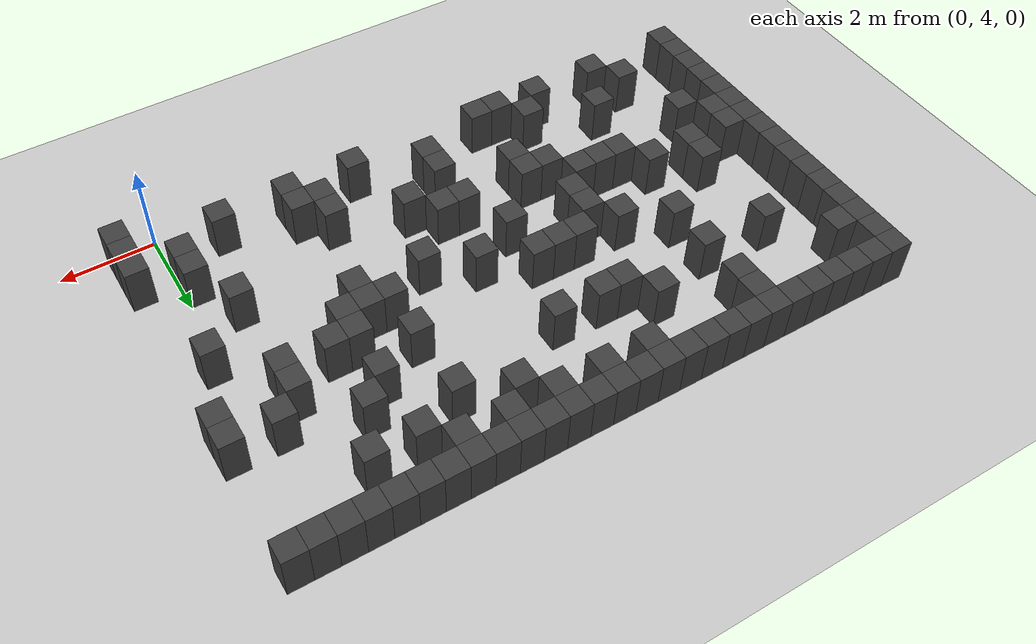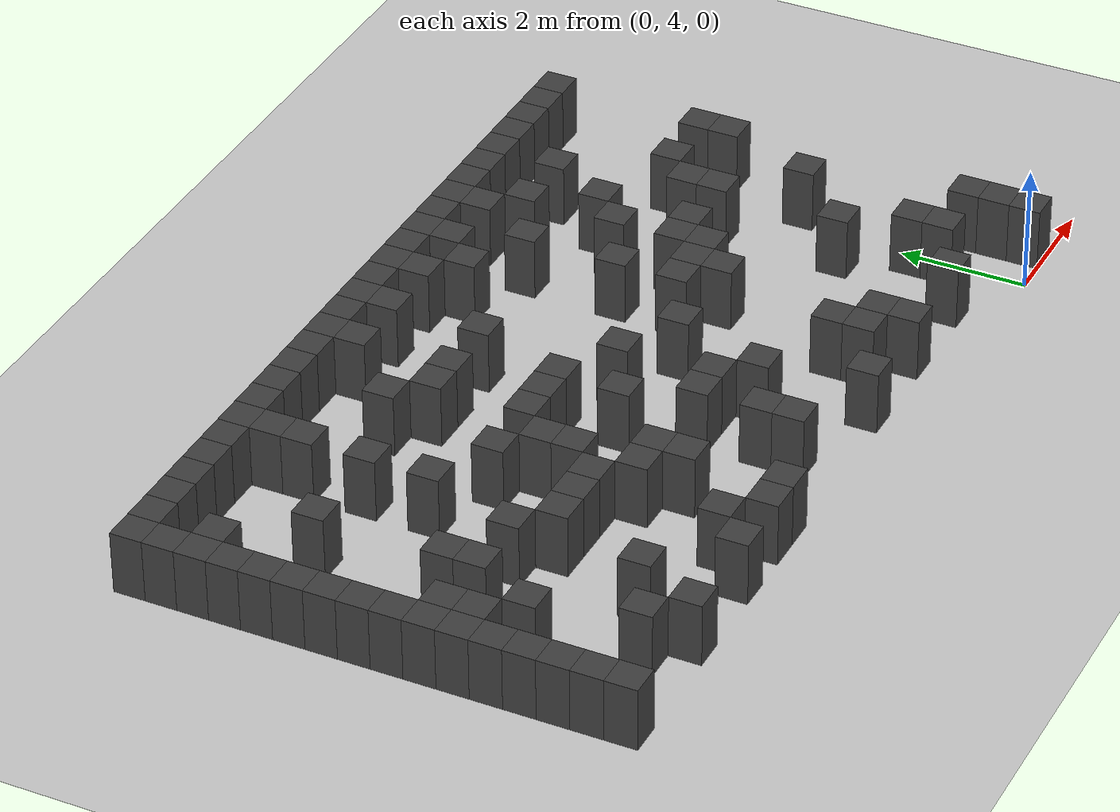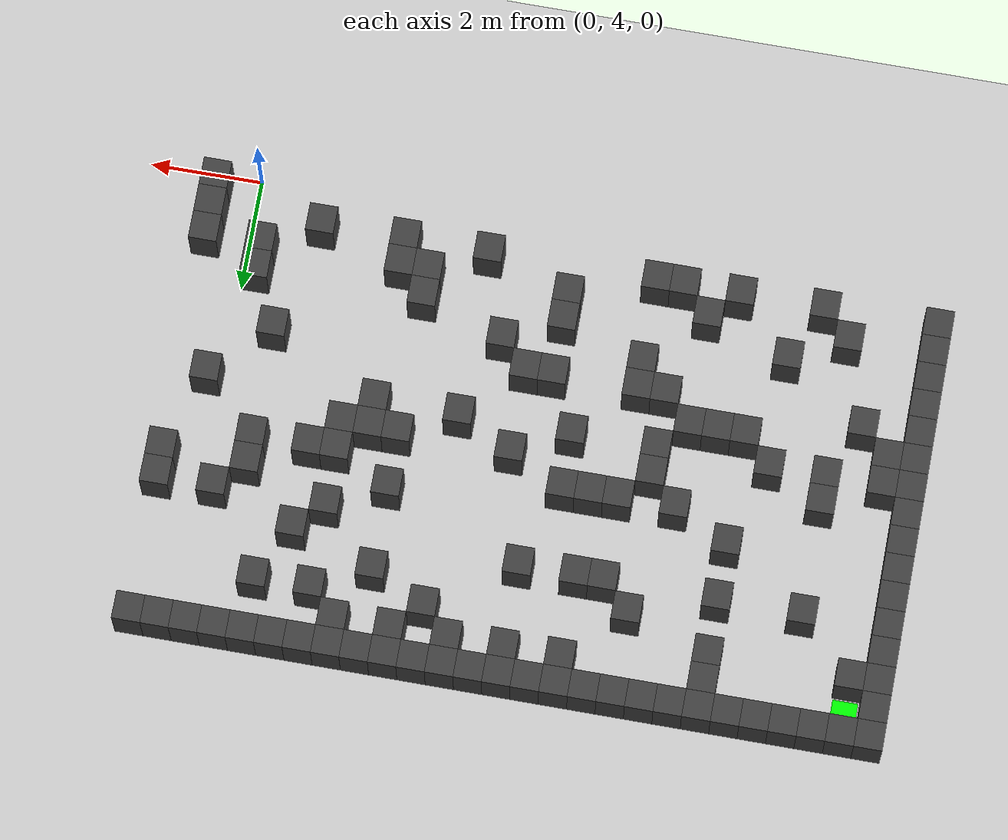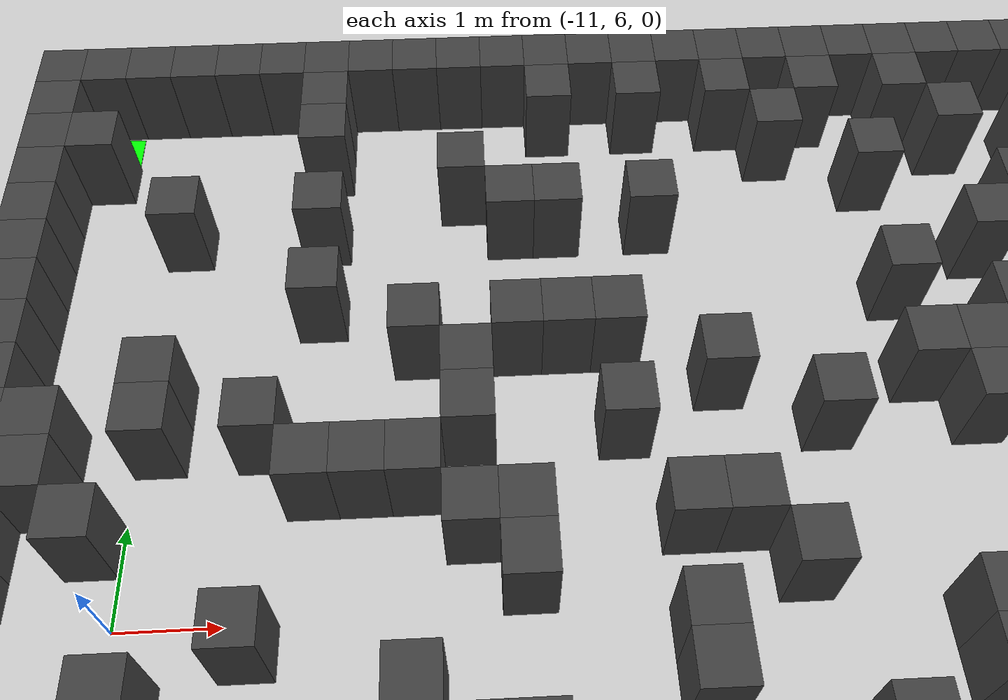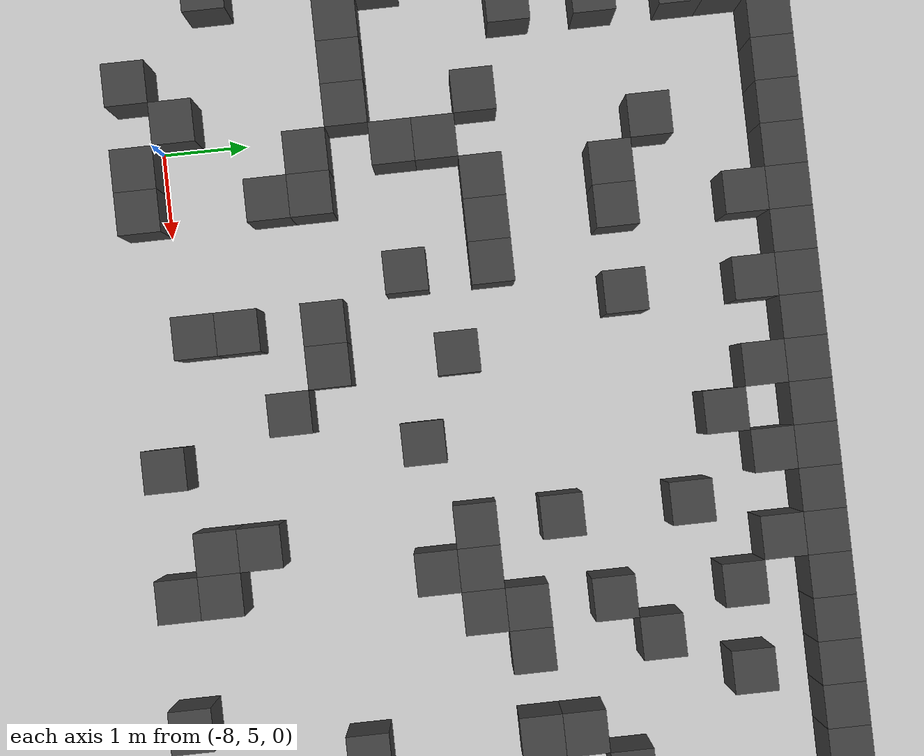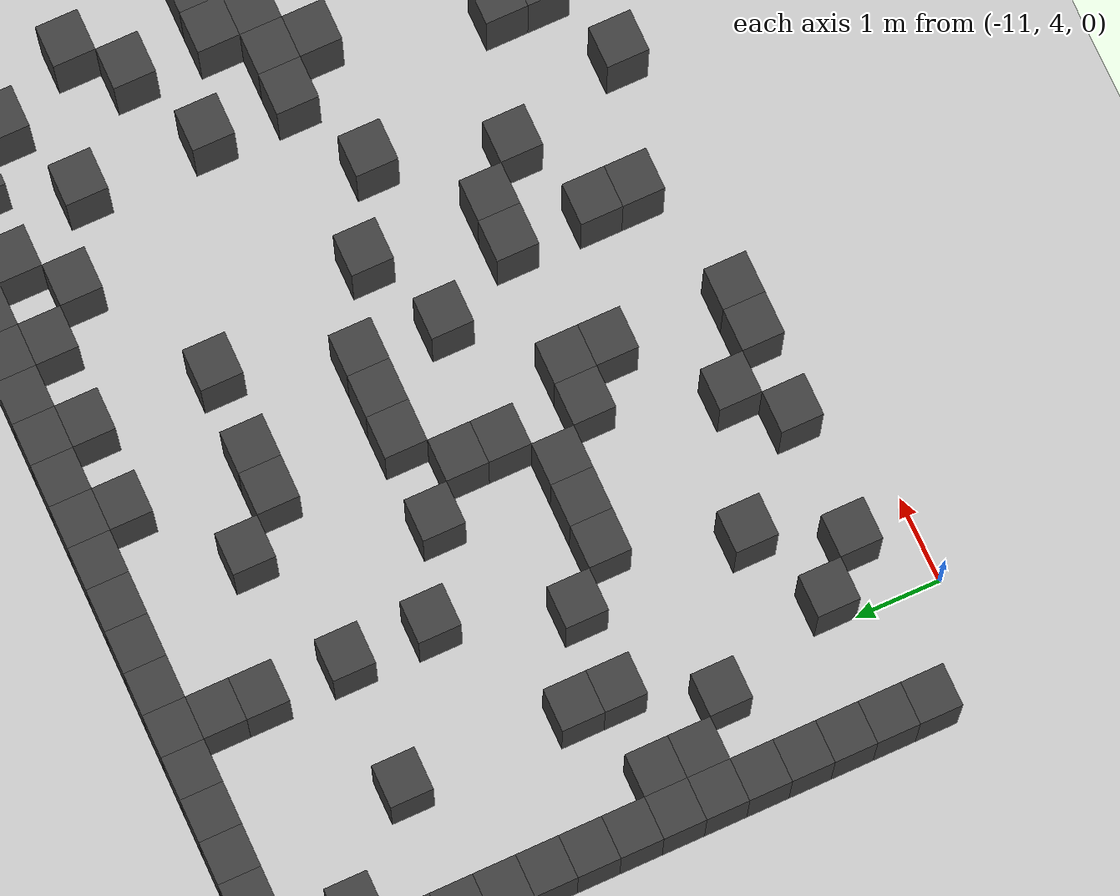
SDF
<sdf version="1.7">
 <world name="map_4818">
  <model name="ground_plane">
   <static>true</static>
   <link name="link">
    <collision name="collision">
     <geometry><plane><normal>0 0 1</normal><size>200 200</size></plane></geometry>
    </collision>
    <visual name="visual">
     <geometry><plane><normal>0 0 1</normal><size>200 200</size></plane></geometry>
     <material><ambient>0.8 0.8 0.8 1</ambient><diffuse>0.8 0.8 0.8 1</diffuse></material>
    </visual>
   </link>
  </model>
  <model name="maze_environment">
   <static>true</static>
   <link name="wall_0">
    <pose>-12.250 12.250 0.500 0 0 0</pose>
    <collision name="col"><geometry><box><size>0.5 0.5 1.0</size></box></geometry></collision>
    <visual name="vis">
     <geometry><box><size>0.5 0.5 1.0</size></box></geometry>
     <material><ambient>0.15 0.15 0.15 1</ambient><diffuse>0.25 0.25 0.25 1</diffuse></material>
    </visual>
   </link>
   <link name="wall_1">
    <pose>-11.750 12.250 0.500 0 0 0</pose>
    <collision name="col"><geometry><box><size>0.5 0.5 1.0</size></box></geometry></collision>
    <visual name="vis">
     <geometry><box><size>0.5 0.5 1.0</size></box></geometry>
     <material><ambient>0.15 0.15 0.15 1</ambient><diffuse>0.25 0.25 0.25 1</diffuse></material>
    </visual>
   </link>
   <link name="wall_2">
    <pose>-11.250 12.250 0.500 0 0 0</pose>
    <collision name="col"><geometry><box><size>0.5 0.5 1.0</size></box></geometry></collision>
    <visual name="vis">
     <geometry><box><size>0.5 0.5 1.0</size></box></geometry>
     <material><ambient>0.15 0.15 0.15 1</ambient><diffuse>0.25 0.25 0.25 1</diffuse></material>
    </visual>
   </link>
   <link name="wall_3">
    <pose>-10.750 12.250 0.500 0 0 0</pose>
    <collision name="col"><geometry><box><size>0.5 0.5 1.0</size></box></geometry></collision>
    <visual name="vis">
     <geometry><box><size>0.5 0.5 1.0</size></box></geometry>
     <material><ambient>0.15 0.15 0.15 1</ambient><diffuse>0.25 0.25 0.25 1</diffuse></material>
    </visual>
   </link>
   <link name="wall_4">
    <pose>-10.250 12.250 0.500 0 0 0</pose>
    <collision name="col"><geometry><box><size>0.5 0.5 1.0</size></box></geometry></collision>
    <visual name="vis">
     <geometry><box><size>0.5 0.5 1.0</size></box></geometry>
     <material><ambient>0.15 0.15 0.15 1</ambient><diffuse>0.25 0.25 0.25 1</diffuse></material>
    </visual>
   </link>
   <link name="wall_5">
    <pose>-9.750 12.250 0.500 0 0 0</pose>
    <collision name="col"><geometry><box><size>0.5 0.5 1.0</size></box></geometry></collision>
    <visual name="vis">
     <geometry><box><size>0.5 0.5 1.0</size></box></geometry>
     <material><ambient>0.15 0.15 0.15 1</ambient><diffuse>0.25 0.25 0.25 1</diffuse></material>
    </visual>
   </link>
   <link name="wall_6">
    <pose>-9.250 12.250 0.500 0 0 0</pose>
    <collision name="col"><geometry><box><size>0.5 0.5 1.0</size></box></geometry></collision>
    <visual name="vis">
     <geometry><box><size>0.5 0.5 1.0</size></box></geometry>
     <material><ambient>0.15 0.15 0.15 1</ambient><diffuse>0.25 0.25 0.25 1</diffuse></material>
    </visual>
   </link>
   <link name="wall_7">
    <pose>-8.750 12.250 0.500 0 0 0</pose>
    <collision name="col"><geometry><box><size>0.5 0.5 1.0</size></box></geometry></collision>
    <visual name="vis">
     <geometry><box><size>0.5 0.5 1.0</size></box></geometry>
     <material><ambient>0.15 0.15 0.15 1</ambient><diffuse>0.25 0.25 0.25 1</diffuse></material>
    </visual>
   </link>
   <link name="wall_8">
    <pose>-8.250 12.250 0.500 0 0 0</pose>
    <collision name="col"><geometry><box><size>0.5 0.5 1.0</size></box></geometry></collision>
    <visual name="vis">
     <geometry><box><size>0.5 0.5 1.0</size></box></geometry>
     <material><ambient>0.15 0.15 0.15 1</ambient><diffuse>0.25 0.25 0.25 1</diffuse></material>
    </visual>
   </link>
   <link name="wall_9">
    <pose>-7.750 12.250 0.500 0 0 0</pose>
    <collision name="col"><geometry><box><size>0.5 0.5 1.0</size></box></geometry></collision>
    <visual name="vis">
     <geometry><box><size>0.5 0.5 1.0</size></box></geometry>
     <material><ambient>0.15 0.15 0.15 1</ambient><diffuse>0.25 0.25 0.25 1</diffuse></material>
    </visual>
   </link>
   <link name="wall_10">
    <pose>-7.250 12.250 0.500 0 0 0</pose>
    <collision name="col"><geometry><box><size>0.5 0.5 1.0</size></box></geometry></collision>
    <visual name="vis">
     <geometry><box><size>0.5 0.5 1.0</size></box></geometry>
     <material><ambient>0.15 0.15 0.15 1</ambient><diffuse>0.25 0.25 0.25 1</diffuse></material>
    </visual>
   </link>
   <link name="wall_11">
    <pose>-6.750 12.250 0.500 0 0 0</pose>
    <collision name="col"><geometry><box><size>0.5 0.5 1.0</size></box></geometry></collision>
    <visual name="vis">
     <geometry><box><size>0.5 0.5 1.0</size></box></geometry>
     <material><ambient>0.15 0.15 0.15 1</ambient><diffuse>0.25 0.25 0.25 1</diffuse></material>
    </visual>
   </link>
   <link name="wall_12">
    <pose>-6.250 12.250 0.500 0 0 0</pose>
    <collision name="col"><geometry><box><size>0.5 0.5 1.0</size></box></geometry></collision>
    <visual name="vis">
     <geometry><box><size>0.5 0.5 1.0</size></box></geometry>
     <material><ambient>0.15 0.15 0.15 1</ambient><diffuse>0.25 0.25 0.25 1</diffuse></material>
    </visual>
   </link>
   <link name="wall_13">
    <pose>-5.750 12.250 0.500 0 0 0</pose>
    <collision name="col"><geometry><box><size>0.5 0.5 1.0</size></box></geometry></collision>
    <visual name="vis">
     <geometry><box><size>0.5 0.5 1.0</size></box></geometry>
     <material><ambient>0.15 0.15 0.15 1</ambient><diffuse>0.25 0.25 0.25 1</diffuse></material>
    </visual>
   </link>
   <link name="wall_14">
    <pose>-5.250 12.250 0.500 0 0 0</pose>
    <collision name="col"><geometry><box><size>0.5 0.5 1.0</size></box></geometry></collision>
    <visual name="vis">
     <geometry><box><size>0.5 0.5 1.0</size></box></geometry>
     <material><ambient>0.15 0.15 0.15 1</ambient><diffuse>0.25 0.25 0.25 1</diffuse></material>
    </visual>
   </link>
   <link name="wall_15">
    <pose>-4.750 12.250 0.500 0 0 0</pose>
    <collision name="col"><geometry><box><size>0.5 0.5 1.0</size></box></geometry></collision>
    <visual name="vis">
     <geometry><box><size>0.5 0.5 1.0</size></box></geometry>
     <material><ambient>0.15 0.15 0.15 1</ambient><diffuse>0.25 0.25 0.25 1</diffuse></material>
    </visual>
   </link>
   <link name="wall_16">
    <pose>-4.250 12.250 0.500 0 0 0</pose>
    <collision name="col"><geometry><box><size>0.5 0.5 1.0</size></box></geometry></collision>
    <visual name="vis">
     <geometry><box><size>0.5 0.5 1.0</size></box></geometry>
     <material><ambient>0.15 0.15 0.15 1</ambient><diffuse>0.25 0.25 0.25 1</diffuse></material>
    </visual>
   </link>
   <link name="wall_17">
    <pose>-3.750 12.250 0.500 0 0 0</pose>
    <collision name="col"><geometry><box><size>0.5 0.5 1.0</size></box></geometry></collision>
    <visual name="vis">
     <geometry><box><size>0.5 0.5 1.0</size></box></geometry>
     <material><ambient>0.15 0.15 0.15 1</ambient><diffuse>0.25 0.25 0.25 1</diffuse></material>
    </visual>
   </link>
   <link name="wall_18">
    <pose>-3.250 12.250 0.500 0 0 0</pose>
    <collision name="col"><geometry><box><size>0.5 0.5 1.0</size></box></geometry></collision>
    <visual name="vis">
     <geometry><box><size>0.5 0.5 1.0</size></box></geometry>
     <material><ambient>0.15 0.15 0.15 1</ambient><diffuse>0.25 0.25 0.25 1</diffuse></material>
    </visual>
   </link>
   <link name="wall_19">
    <pose>-2.750 12.250 0.500 0 0 0</pose>
    <collision name="col"><geometry><box><size>0.5 0.5 1.0</size></box></geometry></collision>
    <visual name="vis">
     <geometry><box><size>0.5 0.5 1.0</size></box></geometry>
     <material><ambient>0.15 0.15 0.15 1</ambient><diffuse>0.25 0.25 0.25 1</diffuse></material>
    </visual>
   </link>
   <link name="wall_20">
    <pose>-2.250 12.250 0.500 0 0 0</pose>
    <collision name="col"><geometry><box><size>0.5 0.5 1.0</size></box></geometry></collision>
    <visual name="vis">
     <geometry><box><size>0.5 0.5 1.0</size></box></geometry>
     <material><ambient>0.15 0.15 0.15 1</ambient><diffuse>0.25 0.25 0.25 1</diffuse></material>
    </visual>
   </link>
   <link name="wall_21">
    <pose>-1.750 12.250 0.500 0 0 0</pose>
    <collision name="col"><geometry><box><size>0.5 0.5 1.0</size></box></geometry></collision>
    <visual name="vis">
     <geometry><box><size>0.5 0.5 1.0</size></box></geometry>
     <material><ambient>0.15 0.15 0.15 1</ambient><diffuse>0.25 0.25 0.25 1</diffuse></material>
    </visual>
   </link>
   <link name="wall_22">
    <pose>-1.250 12.250 0.500 0 0 0</pose>
    <collision name="col"><geometry><box><size>0.5 0.5 1.0</size></box></geometry></collision>
    <visual name="vis">
     <geometry><box><size>0.5 0.5 1.0</size></box></geometry>
     <material><ambient>0.15 0.15 0.15 1</ambient><diffuse>0.25 0.25 0.25 1</diffuse></material>
    </visual>
   </link>
   <link name="wall_23">
    <pose>-0.750 12.250 0.500 0 0 0</pose>
    <collision name="col"><geometry><box><size>0.5 0.5 1.0</size></box></geometry></collision>
    <visual name="vis">
     <geometry><box><size>0.5 0.5 1.0</size></box></geometry>
     <material><ambient>0.15 0.15 0.15 1</ambient><diffuse>0.25 0.25 0.25 1</diffuse></material>
    </visual>
   </link>
   <link name="wall_24">
    <pose>-0.250 12.250 0.500 0 0 0</pose>
    <collision name="col"><geometry><box><size>0.5 0.5 1.0</size></box></geometry></collision>
    <visual name="vis">
     <geometry><box><size>0.5 0.5 1.0</size></box></geometry>
     <material><ambient>0.15 0.15 0.15 1</ambient><diffuse>0.25 0.25 0.25 1</diffuse></material>
    </visual>
   </link>
   <link name="wall_25">
    <pose>0.250 12.250 0.500 0 0 0</pose>
    <collision name="col"><geometry><box><size>0.5 0.5 1.0</size></box></geometry></collision>
    <visual name="vis">
     <geometry><box><size>0.5 0.5 1.0</size></box></geometry>
     <material><ambient>0.15 0.15 0.15 1</ambient><diffuse>0.25 0.25 0.25 1</diffuse></material>
    </visual>
   </link>
   <link name="wall_26">
    <pose>0.750 12.250 0.500 0 0 0</pose>
    <collision name="col"><geometry><box><size>0.5 0.5 1.0</size></box></geometry></collision>
    <visual name="vis">
     <geometry><box><size>0.5 0.5 1.0</size></box></geometry>
     <material><ambient>0.15 0.15 0.15 1</ambient><diffuse>0.25 0.25 0.25 1</diffuse></material>
    </visual>
   </link>
   <link name="wall_50">
    <pose>-12.250 11.750 0.500 0 0 0</pose>
    <collision name="col"><geometry><box><size>0.5 0.5 1.0</size></box></geometry></collision>
    <visual name="vis">
     <geometry><box><size>0.5 0.5 1.0</size></box></geometry>
     <material><ambient>0.15 0.15 0.15 1</ambient><diffuse>0.25 0.25 0.25 1</diffuse></material>
    </visual>
   </link>
   <link name="wall_51">
    <pose>-9.250 11.750 0.500 0 0 0</pose>
    <collision name="col"><geometry><box><size>0.5 0.5 1.0</size></box></geometry></collision>
    <visual name="vis">
     <geometry><box><size>0.5 0.5 1.0</size></box></geometry>
     <material><ambient>0.15 0.15 0.15 1</ambient><diffuse>0.25 0.25 0.25 1</diffuse></material>
    </visual>
   </link>
   <link name="wall_52">
    <pose>-6.750 11.750 0.500 0 0 0</pose>
    <collision name="col"><geometry><box><size>0.5 0.5 1.0</size></box></geometry></collision>
    <visual name="vis">
     <geometry><box><size>0.5 0.5 1.0</size></box></geometry>
     <material><ambient>0.15 0.15 0.15 1</ambient><diffuse>0.25 0.25 0.25 1</diffuse></material>
    </visual>
   </link>
   <link name="wall_53">
    <pose>-5.750 11.750 0.500 0 0 0</pose>
    <collision name="col"><geometry><box><size>0.5 0.5 1.0</size></box></geometry></collision>
    <visual name="vis">
     <geometry><box><size>0.5 0.5 1.0</size></box></geometry>
     <material><ambient>0.15 0.15 0.15 1</ambient><diffuse>0.25 0.25 0.25 1</diffuse></material>
    </visual>
   </link>
   <link name="wall_54">
    <pose>-4.750 11.750 0.500 0 0 0</pose>
    <collision name="col"><geometry><box><size>0.5 0.5 1.0</size></box></geometry></collision>
    <visual name="vis">
     <geometry><box><size>0.5 0.5 1.0</size></box></geometry>
     <material><ambient>0.15 0.15 0.15 1</ambient><diffuse>0.25 0.25 0.25 1</diffuse></material>
    </visual>
   </link>
   <link name="wall_55">
    <pose>-3.750 11.750 0.500 0 0 0</pose>
    <collision name="col"><geometry><box><size>0.5 0.5 1.0</size></box></geometry></collision>
    <visual name="vis">
     <geometry><box><size>0.5 0.5 1.0</size></box></geometry>
     <material><ambient>0.15 0.15 0.15 1</ambient><diffuse>0.25 0.25 0.25 1</diffuse></material>
    </visual>
   </link>
   <link name="wall_56">
    <pose>-2.750 11.750 0.500 0 0 0</pose>
    <collision name="col"><geometry><box><size>0.5 0.5 1.0</size></box></geometry></collision>
    <visual name="vis">
     <geometry><box><size>0.5 0.5 1.0</size></box></geometry>
     <material><ambient>0.15 0.15 0.15 1</ambient><diffuse>0.25 0.25 0.25 1</diffuse></material>
    </visual>
   </link>
   <link name="wall_66">
    <pose>-12.250 11.250 0.500 0 0 0</pose>
    <collision name="col"><geometry><box><size>0.5 0.5 1.0</size></box></geometry></collision>
    <visual name="vis">
     <geometry><box><size>0.5 0.5 1.0</size></box></geometry>
     <material><ambient>0.15 0.15 0.15 1</ambient><diffuse>0.25 0.25 0.25 1</diffuse></material>
    </visual>
   </link>
   <link name="wall_67">
    <pose>-11.750 11.250 0.500 0 0 0</pose>
    <collision name="col"><geometry><box><size>0.5 0.5 1.0</size></box></geometry></collision>
    <visual name="vis">
     <geometry><box><size>0.5 0.5 1.0</size></box></geometry>
     <material><ambient>0.15 0.15 0.15 1</ambient><diffuse>0.25 0.25 0.25 1</diffuse></material>
    </visual>
   </link>
   <link name="wall_68">
    <pose>-9.250 11.250 0.500 0 0 0</pose>
    <collision name="col"><geometry><box><size>0.5 0.5 1.0</size></box></geometry></collision>
    <visual name="vis">
     <geometry><box><size>0.5 0.5 1.0</size></box></geometry>
     <material><ambient>0.15 0.15 0.15 1</ambient><diffuse>0.25 0.25 0.25 1</diffuse></material>
    </visual>
   </link>
   <link name="wall_69">
    <pose>-4.250 11.250 0.500 0 0 0</pose>
    <collision name="col"><geometry><box><size>0.5 0.5 1.0</size></box></geometry></collision>
    <visual name="vis">
     <geometry><box><size>0.5 0.5 1.0</size></box></geometry>
     <material><ambient>0.15 0.15 0.15 1</ambient><diffuse>0.25 0.25 0.25 1</diffuse></material>
    </visual>
   </link>
   <link name="wall_70">
    <pose>-2.250 11.250 0.500 0 0 0</pose>
    <collision name="col"><geometry><box><size>0.5 0.5 1.0</size></box></geometry></collision>
    <visual name="vis">
     <geometry><box><size>0.5 0.5 1.0</size></box></geometry>
     <material><ambient>0.15 0.15 0.15 1</ambient><diffuse>0.25 0.25 0.25 1</diffuse></material>
    </visual>
   </link>
   <link name="wall_71">
    <pose>-1.250 11.250 0.500 0 0 0</pose>
    <collision name="col"><geometry><box><size>0.5 0.5 1.0</size></box></geometry></collision>
    <visual name="vis">
     <geometry><box><size>0.5 0.5 1.0</size></box></geometry>
     <material><ambient>0.15 0.15 0.15 1</ambient><diffuse>0.25 0.25 0.25 1</diffuse></material>
    </visual>
   </link>
   <link name="wall_76">
    <pose>-12.250 10.750 0.500 0 0 0</pose>
    <collision name="col"><geometry><box><size>0.5 0.5 1.0</size></box></geometry></collision>
    <visual name="vis">
     <geometry><box><size>0.5 0.5 1.0</size></box></geometry>
     <material><ambient>0.15 0.15 0.15 1</ambient><diffuse>0.25 0.25 0.25 1</diffuse></material>
    </visual>
   </link>
   <link name="wall_77">
    <pose>-7.750 10.750 0.500 0 0 0</pose>
    <collision name="col"><geometry><box><size>0.5 0.5 1.0</size></box></geometry></collision>
    <visual name="vis">
     <geometry><box><size>0.5 0.5 1.0</size></box></geometry>
     <material><ambient>0.15 0.15 0.15 1</ambient><diffuse>0.25 0.25 0.25 1</diffuse></material>
    </visual>
   </link>
   <link name="wall_78">
    <pose>-3.250 10.750 0.500 0 0 0</pose>
    <collision name="col"><geometry><box><size>0.5 0.5 1.0</size></box></geometry></collision>
    <visual name="vis">
     <geometry><box><size>0.5 0.5 1.0</size></box></geometry>
     <material><ambient>0.15 0.15 0.15 1</ambient><diffuse>0.25 0.25 0.25 1</diffuse></material>
    </visual>
   </link>
   <link name="wall_82">
    <pose>-12.250 10.250 0.500 0 0 0</pose>
    <collision name="col"><geometry><box><size>0.5 0.5 1.0</size></box></geometry></collision>
    <visual name="vis">
     <geometry><box><size>0.5 0.5 1.0</size></box></geometry>
     <material><ambient>0.15 0.15 0.15 1</ambient><diffuse>0.25 0.25 0.25 1</diffuse></material>
    </visual>
   </link>
   <link name="wall_83">
    <pose>-10.750 10.250 0.500 0 0 0</pose>
    <collision name="col"><geometry><box><size>0.5 0.5 1.0</size></box></geometry></collision>
    <visual name="vis">
     <geometry><box><size>0.5 0.5 1.0</size></box></geometry>
     <material><ambient>0.15 0.15 0.15 1</ambient><diffuse>0.25 0.25 0.25 1</diffuse></material>
    </visual>
   </link>
   <link name="wall_84">
    <pose>-9.250 10.250 0.500 0 0 0</pose>
    <collision name="col"><geometry><box><size>0.5 0.5 1.0</size></box></geometry></collision>
    <visual name="vis">
     <geometry><box><size>0.5 0.5 1.0</size></box></geometry>
     <material><ambient>0.15 0.15 0.15 1</ambient><diffuse>0.25 0.25 0.25 1</diffuse></material>
    </visual>
   </link>
   <link name="wall_85">
    <pose>-7.250 10.250 0.500 0 0 0</pose>
    <collision name="col"><geometry><box><size>0.5 0.5 1.0</size></box></geometry></collision>
    <visual name="vis">
     <geometry><box><size>0.5 0.5 1.0</size></box></geometry>
     <material><ambient>0.15 0.15 0.15 1</ambient><diffuse>0.25 0.25 0.25 1</diffuse></material>
    </visual>
   </link>
   <link name="wall_86">
    <pose>-6.750 10.250 0.500 0 0 0</pose>
    <collision name="col"><geometry><box><size>0.5 0.5 1.0</size></box></geometry></collision>
    <visual name="vis">
     <geometry><box><size>0.5 0.5 1.0</size></box></geometry>
     <material><ambient>0.15 0.15 0.15 1</ambient><diffuse>0.25 0.25 0.25 1</diffuse></material>
    </visual>
   </link>
   <link name="wall_87">
    <pose>-5.750 10.250 0.500 0 0 0</pose>
    <collision name="col"><geometry><box><size>0.5 0.5 1.0</size></box></geometry></collision>
    <visual name="vis">
     <geometry><box><size>0.5 0.5 1.0</size></box></geometry>
     <material><ambient>0.15 0.15 0.15 1</ambient><diffuse>0.25 0.25 0.25 1</diffuse></material>
    </visual>
   </link>
   <link name="wall_88">
    <pose>-1.750 10.250 0.500 0 0 0</pose>
    <collision name="col"><geometry><box><size>0.5 0.5 1.0</size></box></geometry></collision>
    <visual name="vis">
     <geometry><box><size>0.5 0.5 1.0</size></box></geometry>
     <material><ambient>0.15 0.15 0.15 1</ambient><diffuse>0.25 0.25 0.25 1</diffuse></material>
    </visual>
   </link>
   <link name="wall_96">
    <pose>-12.250 9.750 0.500 0 0 0</pose>
    <collision name="col"><geometry><box><size>0.5 0.5 1.0</size></box></geometry></collision>
    <visual name="vis">
     <geometry><box><size>0.5 0.5 1.0</size></box></geometry>
     <material><ambient>0.15 0.15 0.15 1</ambient><diffuse>0.25 0.25 0.25 1</diffuse></material>
    </visual>
   </link>
   <link name="wall_97">
    <pose>-2.250 9.750 0.500 0 0 0</pose>
    <collision name="col"><geometry><box><size>0.5 0.5 1.0</size></box></geometry></collision>
    <visual name="vis">
     <geometry><box><size>0.5 0.5 1.0</size></box></geometry>
     <material><ambient>0.15 0.15 0.15 1</ambient><diffuse>0.25 0.25 0.25 1</diffuse></material>
    </visual>
   </link>
   <link name="wall_98">
    <pose>-0.250 9.750 0.500 0 0 0</pose>
    <collision name="col"><geometry><box><size>0.5 0.5 1.0</size></box></geometry></collision>
    <visual name="vis">
     <geometry><box><size>0.5 0.5 1.0</size></box></geometry>
     <material><ambient>0.15 0.15 0.15 1</ambient><diffuse>0.25 0.25 0.25 1</diffuse></material>
    </visual>
   </link>
   <link name="wall_99">
    <pose>0.750 9.750 0.500 0 0 0</pose>
    <collision name="col"><geometry><box><size>0.5 0.5 1.0</size></box></geometry></collision>
    <visual name="vis">
     <geometry><box><size>0.5 0.5 1.0</size></box></geometry>
     <material><ambient>0.15 0.15 0.15 1</ambient><diffuse>0.25 0.25 0.25 1</diffuse></material>
    </visual>
   </link>
   <link name="wall_108">
    <pose>-12.250 9.250 0.500 0 0 0</pose>
    <collision name="col"><geometry><box><size>0.5 0.5 1.0</size></box></geometry></collision>
    <visual name="vis">
     <geometry><box><size>0.5 0.5 1.0</size></box></geometry>
     <material><ambient>0.15 0.15 0.15 1</ambient><diffuse>0.25 0.25 0.25 1</diffuse></material>
    </visual>
   </link>
   <link name="wall_109">
    <pose>-9.250 9.250 0.500 0 0 0</pose>
    <collision name="col"><geometry><box><size>0.5 0.5 1.0</size></box></geometry></collision>
    <visual name="vis">
     <geometry><box><size>0.5 0.5 1.0</size></box></geometry>
     <material><ambient>0.15 0.15 0.15 1</ambient><diffuse>0.25 0.25 0.25 1</diffuse></material>
    </visual>
   </link>
   <link name="wall_110">
    <pose>-3.250 9.250 0.500 0 0 0</pose>
    <collision name="col"><geometry><box><size>0.5 0.5 1.0</size></box></geometry></collision>
    <visual name="vis">
     <geometry><box><size>0.5 0.5 1.0</size></box></geometry>
     <material><ambient>0.15 0.15 0.15 1</ambient><diffuse>0.25 0.25 0.25 1</diffuse></material>
    </visual>
   </link>
   <link name="wall_111">
    <pose>-0.750 9.250 0.500 0 0 0</pose>
    <collision name="col"><geometry><box><size>0.5 0.5 1.0</size></box></geometry></collision>
    <visual name="vis">
     <geometry><box><size>0.5 0.5 1.0</size></box></geometry>
     <material><ambient>0.15 0.15 0.15 1</ambient><diffuse>0.25 0.25 0.25 1</diffuse></material>
    </visual>
   </link>
   <link name="wall_112">
    <pose>0.750 9.250 0.500 0 0 0</pose>
    <collision name="col"><geometry><box><size>0.5 0.5 1.0</size></box></geometry></collision>
    <visual name="vis">
     <geometry><box><size>0.5 0.5 1.0</size></box></geometry>
     <material><ambient>0.15 0.15 0.15 1</ambient><diffuse>0.25 0.25 0.25 1</diffuse></material>
    </visual>
   </link>
   <link name="wall_121">
    <pose>-12.250 8.750 0.500 0 0 0</pose>
    <collision name="col"><geometry><box><size>0.5 0.5 1.0</size></box></geometry></collision>
    <visual name="vis">
     <geometry><box><size>0.5 0.5 1.0</size></box></geometry>
     <material><ambient>0.15 0.15 0.15 1</ambient><diffuse>0.25 0.25 0.25 1</diffuse></material>
    </visual>
   </link>
   <link name="wall_122">
    <pose>-8.250 8.750 0.500 0 0 0</pose>
    <collision name="col"><geometry><box><size>0.5 0.5 1.0</size></box></geometry></collision>
    <visual name="vis">
     <geometry><box><size>0.5 0.5 1.0</size></box></geometry>
     <material><ambient>0.15 0.15 0.15 1</ambient><diffuse>0.25 0.25 0.25 1</diffuse></material>
    </visual>
   </link>
   <link name="wall_123">
    <pose>-7.250 8.750 0.500 0 0 0</pose>
    <collision name="col"><geometry><box><size>0.5 0.5 1.0</size></box></geometry></collision>
    <visual name="vis">
     <geometry><box><size>0.5 0.5 1.0</size></box></geometry>
     <material><ambient>0.15 0.15 0.15 1</ambient><diffuse>0.25 0.25 0.25 1</diffuse></material>
    </visual>
   </link>
   <link name="wall_124">
    <pose>-6.750 8.750 0.500 0 0 0</pose>
    <collision name="col"><geometry><box><size>0.5 0.5 1.0</size></box></geometry></collision>
    <visual name="vis">
     <geometry><box><size>0.5 0.5 1.0</size></box></geometry>
     <material><ambient>0.15 0.15 0.15 1</ambient><diffuse>0.25 0.25 0.25 1</diffuse></material>
    </visual>
   </link>
   <link name="wall_125">
    <pose>-6.250 8.750 0.500 0 0 0</pose>
    <collision name="col"><geometry><box><size>0.5 0.5 1.0</size></box></geometry></collision>
    <visual name="vis">
     <geometry><box><size>0.5 0.5 1.0</size></box></geometry>
     <material><ambient>0.15 0.15 0.15 1</ambient><diffuse>0.25 0.25 0.25 1</diffuse></material>
    </visual>
   </link>
   <link name="wall_126">
    <pose>-2.250 8.750 0.500 0 0 0</pose>
    <collision name="col"><geometry><box><size>0.5 0.5 1.0</size></box></geometry></collision>
    <visual name="vis">
     <geometry><box><size>0.5 0.5 1.0</size></box></geometry>
     <material><ambient>0.15 0.15 0.15 1</ambient><diffuse>0.25 0.25 0.25 1</diffuse></material>
    </visual>
   </link>
   <link name="wall_127">
    <pose>-1.750 8.750 0.500 0 0 0</pose>
    <collision name="col"><geometry><box><size>0.5 0.5 1.0</size></box></geometry></collision>
    <visual name="vis">
     <geometry><box><size>0.5 0.5 1.0</size></box></geometry>
     <material><ambient>0.15 0.15 0.15 1</ambient><diffuse>0.25 0.25 0.25 1</diffuse></material>
    </visual>
   </link>
   <link name="wall_128">
    <pose>-0.750 8.750 0.500 0 0 0</pose>
    <collision name="col"><geometry><box><size>0.5 0.5 1.0</size></box></geometry></collision>
    <visual name="vis">
     <geometry><box><size>0.5 0.5 1.0</size></box></geometry>
     <material><ambient>0.15 0.15 0.15 1</ambient><diffuse>0.25 0.25 0.25 1</diffuse></material>
    </visual>
   </link>
   <link name="wall_135">
    <pose>-12.250 8.250 0.500 0 0 0</pose>
    <collision name="col"><geometry><box><size>0.5 0.5 1.0</size></box></geometry></collision>
    <visual name="vis">
     <geometry><box><size>0.5 0.5 1.0</size></box></geometry>
     <material><ambient>0.15 0.15 0.15 1</ambient><diffuse>0.25 0.25 0.25 1</diffuse></material>
    </visual>
   </link>
   <link name="wall_136">
    <pose>-10.750 8.250 0.500 0 0 0</pose>
    <collision name="col"><geometry><box><size>0.5 0.5 1.0</size></box></geometry></collision>
    <visual name="vis">
     <geometry><box><size>0.5 0.5 1.0</size></box></geometry>
     <material><ambient>0.15 0.15 0.15 1</ambient><diffuse>0.25 0.25 0.25 1</diffuse></material>
    </visual>
   </link>
   <link name="wall_137">
    <pose>-7.750 8.250 0.500 0 0 0</pose>
    <collision name="col"><geometry><box><size>0.5 0.5 1.0</size></box></geometry></collision>
    <visual name="vis">
     <geometry><box><size>0.5 0.5 1.0</size></box></geometry>
     <material><ambient>0.15 0.15 0.15 1</ambient><diffuse>0.25 0.25 0.25 1</diffuse></material>
    </visual>
   </link>
   <link name="wall_138">
    <pose>-5.250 8.250 0.500 0 0 0</pose>
    <collision name="col"><geometry><box><size>0.5 0.5 1.0</size></box></geometry></collision>
    <visual name="vis">
     <geometry><box><size>0.5 0.5 1.0</size></box></geometry>
     <material><ambient>0.15 0.15 0.15 1</ambient><diffuse>0.25 0.25 0.25 1</diffuse></material>
    </visual>
   </link>
   <link name="wall_139">
    <pose>-3.250 8.250 0.500 0 0 0</pose>
    <collision name="col"><geometry><box><size>0.5 0.5 1.0</size></box></geometry></collision>
    <visual name="vis">
     <geometry><box><size>0.5 0.5 1.0</size></box></geometry>
     <material><ambient>0.15 0.15 0.15 1</ambient><diffuse>0.25 0.25 0.25 1</diffuse></material>
    </visual>
   </link>
   <link name="wall_140">
    <pose>-2.750 8.250 0.500 0 0 0</pose>
    <collision name="col"><geometry><box><size>0.5 0.5 1.0</size></box></geometry></collision>
    <visual name="vis">
     <geometry><box><size>0.5 0.5 1.0</size></box></geometry>
     <material><ambient>0.15 0.15 0.15 1</ambient><diffuse>0.25 0.25 0.25 1</diffuse></material>
    </visual>
   </link>
   <link name="wall_141">
    <pose>-2.250 8.250 0.500 0 0 0</pose>
    <collision name="col"><geometry><box><size>0.5 0.5 1.0</size></box></geometry></collision>
    <visual name="vis">
     <geometry><box><size>0.5 0.5 1.0</size></box></geometry>
     <material><ambient>0.15 0.15 0.15 1</ambient><diffuse>0.25 0.25 0.25 1</diffuse></material>
    </visual>
   </link>
   <link name="wall_150">
    <pose>-12.250 7.750 0.500 0 0 0</pose>
    <collision name="col"><geometry><box><size>0.5 0.5 1.0</size></box></geometry></collision>
    <visual name="vis">
     <geometry><box><size>0.5 0.5 1.0</size></box></geometry>
     <material><ambient>0.15 0.15 0.15 1</ambient><diffuse>0.25 0.25 0.25 1</diffuse></material>
    </visual>
   </link>
   <link name="wall_151">
    <pose>-11.750 7.750 0.500 0 0 0</pose>
    <collision name="col"><geometry><box><size>0.5 0.5 1.0</size></box></geometry></collision>
    <visual name="vis">
     <geometry><box><size>0.5 0.5 1.0</size></box></geometry>
     <material><ambient>0.15 0.15 0.15 1</ambient><diffuse>0.25 0.25 0.25 1</diffuse></material>
    </visual>
   </link>
   <link name="wall_152">
    <pose>-10.750 7.750 0.500 0 0 0</pose>
    <collision name="col"><geometry><box><size>0.5 0.5 1.0</size></box></geometry></collision>
    <visual name="vis">
     <geometry><box><size>0.5 0.5 1.0</size></box></geometry>
     <material><ambient>0.15 0.15 0.15 1</ambient><diffuse>0.25 0.25 0.25 1</diffuse></material>
    </visual>
   </link>
   <link name="wall_153">
    <pose>-9.750 7.750 0.500 0 0 0</pose>
    <collision name="col"><geometry><box><size>0.5 0.5 1.0</size></box></geometry></collision>
    <visual name="vis">
     <geometry><box><size>0.5 0.5 1.0</size></box></geometry>
     <material><ambient>0.15 0.15 0.15 1</ambient><diffuse>0.25 0.25 0.25 1</diffuse></material>
    </visual>
   </link>
   <link name="wall_154">
    <pose>-7.750 7.750 0.500 0 0 0</pose>
    <collision name="col"><geometry><box><size>0.5 0.5 1.0</size></box></geometry></collision>
    <visual name="vis">
     <geometry><box><size>0.5 0.5 1.0</size></box></geometry>
     <material><ambient>0.15 0.15 0.15 1</ambient><diffuse>0.25 0.25 0.25 1</diffuse></material>
    </visual>
   </link>
   <link name="wall_155">
    <pose>-6.250 7.750 0.500 0 0 0</pose>
    <collision name="col"><geometry><box><size>0.5 0.5 1.0</size></box></geometry></collision>
    <visual name="vis">
     <geometry><box><size>0.5 0.5 1.0</size></box></geometry>
     <material><ambient>0.15 0.15 0.15 1</ambient><diffuse>0.25 0.25 0.25 1</diffuse></material>
    </visual>
   </link>
   <link name="wall_156">
    <pose>-4.250 7.750 0.500 0 0 0</pose>
    <collision name="col"><geometry><box><size>0.5 0.5 1.0</size></box></geometry></collision>
    <visual name="vis">
     <geometry><box><size>0.5 0.5 1.0</size></box></geometry>
     <material><ambient>0.15 0.15 0.15 1</ambient><diffuse>0.25 0.25 0.25 1</diffuse></material>
    </visual>
   </link>
   <link name="wall_157">
    <pose>-2.750 7.750 0.500 0 0 0</pose>
    <collision name="col"><geometry><box><size>0.5 0.5 1.0</size></box></geometry></collision>
    <visual name="vis">
     <geometry><box><size>0.5 0.5 1.0</size></box></geometry>
     <material><ambient>0.15 0.15 0.15 1</ambient><diffuse>0.25 0.25 0.25 1</diffuse></material>
    </visual>
   </link>
   <link name="wall_158">
    <pose>0.250 7.750 0.500 0 0 0</pose>
    <collision name="col"><geometry><box><size>0.5 0.5 1.0</size></box></geometry></collision>
    <visual name="vis">
     <geometry><box><size>0.5 0.5 1.0</size></box></geometry>
     <material><ambient>0.15 0.15 0.15 1</ambient><diffuse>0.25 0.25 0.25 1</diffuse></material>
    </visual>
   </link>
   <link name="wall_167">
    <pose>-12.250 7.250 0.500 0 0 0</pose>
    <collision name="col"><geometry><box><size>0.5 0.5 1.0</size></box></geometry></collision>
    <visual name="vis">
     <geometry><box><size>0.5 0.5 1.0</size></box></geometry>
     <material><ambient>0.15 0.15 0.15 1</ambient><diffuse>0.25 0.25 0.25 1</diffuse></material>
    </visual>
   </link>
   <link name="wall_168">
    <pose>-11.750 7.250 0.500 0 0 0</pose>
    <collision name="col"><geometry><box><size>0.5 0.5 1.0</size></box></geometry></collision>
    <visual name="vis">
     <geometry><box><size>0.5 0.5 1.0</size></box></geometry>
     <material><ambient>0.15 0.15 0.15 1</ambient><diffuse>0.25 0.25 0.25 1</diffuse></material>
    </visual>
   </link>
   <link name="wall_169">
    <pose>-9.250 7.250 0.500 0 0 0</pose>
    <collision name="col"><geometry><box><size>0.5 0.5 1.0</size></box></geometry></collision>
    <visual name="vis">
     <geometry><box><size>0.5 0.5 1.0</size></box></geometry>
     <material><ambient>0.15 0.15 0.15 1</ambient><diffuse>0.25 0.25 0.25 1</diffuse></material>
    </visual>
   </link>
   <link name="wall_170">
    <pose>-8.750 7.250 0.500 0 0 0</pose>
    <collision name="col"><geometry><box><size>0.5 0.5 1.0</size></box></geometry></collision>
    <visual name="vis">
     <geometry><box><size>0.5 0.5 1.0</size></box></geometry>
     <material><ambient>0.15 0.15 0.15 1</ambient><diffuse>0.25 0.25 0.25 1</diffuse></material>
    </visual>
   </link>
   <link name="wall_171">
    <pose>-8.250 7.250 0.500 0 0 0</pose>
    <collision name="col"><geometry><box><size>0.5 0.5 1.0</size></box></geometry></collision>
    <visual name="vis">
     <geometry><box><size>0.5 0.5 1.0</size></box></geometry>
     <material><ambient>0.15 0.15 0.15 1</ambient><diffuse>0.25 0.25 0.25 1</diffuse></material>
    </visual>
   </link>
   <link name="wall_181">
    <pose>-12.250 6.750 0.500 0 0 0</pose>
    <collision name="col"><geometry><box><size>0.5 0.5 1.0</size></box></geometry></collision>
    <visual name="vis">
     <geometry><box><size>0.5 0.5 1.0</size></box></geometry>
     <material><ambient>0.15 0.15 0.15 1</ambient><diffuse>0.25 0.25 0.25 1</diffuse></material>
    </visual>
   </link>
   <link name="wall_182">
    <pose>-11.250 6.750 0.500 0 0 0</pose>
    <collision name="col"><geometry><box><size>0.5 0.5 1.0</size></box></geometry></collision>
    <visual name="vis">
     <geometry><box><size>0.5 0.5 1.0</size></box></geometry>
     <material><ambient>0.15 0.15 0.15 1</ambient><diffuse>0.25 0.25 0.25 1</diffuse></material>
    </visual>
   </link>
   <link name="wall_183">
    <pose>-7.750 6.750 0.500 0 0 0</pose>
    <collision name="col"><geometry><box><size>0.5 0.5 1.0</size></box></geometry></collision>
    <visual name="vis">
     <geometry><box><size>0.5 0.5 1.0</size></box></geometry>
     <material><ambient>0.15 0.15 0.15 1</ambient><diffuse>0.25 0.25 0.25 1</diffuse></material>
    </visual>
   </link>
   <link name="wall_184">
    <pose>-7.250 6.750 0.500 0 0 0</pose>
    <collision name="col"><geometry><box><size>0.5 0.5 1.0</size></box></geometry></collision>
    <visual name="vis">
     <geometry><box><size>0.5 0.5 1.0</size></box></geometry>
     <material><ambient>0.15 0.15 0.15 1</ambient><diffuse>0.25 0.25 0.25 1</diffuse></material>
    </visual>
   </link>
   <link name="wall_185">
    <pose>-5.750 6.750 0.500 0 0 0</pose>
    <collision name="col"><geometry><box><size>0.5 0.5 1.0</size></box></geometry></collision>
    <visual name="vis">
     <geometry><box><size>0.5 0.5 1.0</size></box></geometry>
     <material><ambient>0.15 0.15 0.15 1</ambient><diffuse>0.25 0.25 0.25 1</diffuse></material>
    </visual>
   </link>
   <link name="wall_186">
    <pose>-5.250 6.750 0.500 0 0 0</pose>
    <collision name="col"><geometry><box><size>0.5 0.5 1.0</size></box></geometry></collision>
    <visual name="vis">
     <geometry><box><size>0.5 0.5 1.0</size></box></geometry>
     <material><ambient>0.15 0.15 0.15 1</ambient><diffuse>0.25 0.25 0.25 1</diffuse></material>
    </visual>
   </link>
   <link name="wall_187">
    <pose>-0.750 6.750 0.500 0 0 0</pose>
    <collision name="col"><geometry><box><size>0.5 0.5 1.0</size></box></geometry></collision>
    <visual name="vis">
     <geometry><box><size>0.5 0.5 1.0</size></box></geometry>
     <material><ambient>0.15 0.15 0.15 1</ambient><diffuse>0.25 0.25 0.25 1</diffuse></material>
    </visual>
   </link>
   <link name="wall_197">
    <pose>-12.250 6.250 0.500 0 0 0</pose>
    <collision name="col"><geometry><box><size>0.5 0.5 1.0</size></box></geometry></collision>
    <visual name="vis">
     <geometry><box><size>0.5 0.5 1.0</size></box></geometry>
     <material><ambient>0.15 0.15 0.15 1</ambient><diffuse>0.25 0.25 0.25 1</diffuse></material>
    </visual>
   </link>
   <link name="wall_198">
    <pose>-7.250 6.250 0.500 0 0 0</pose>
    <collision name="col"><geometry><box><size>0.5 0.5 1.0</size></box></geometry></collision>
    <visual name="vis">
     <geometry><box><size>0.5 0.5 1.0</size></box></geometry>
     <material><ambient>0.15 0.15 0.15 1</ambient><diffuse>0.25 0.25 0.25 1</diffuse></material>
    </visual>
   </link>
   <link name="wall_199">
    <pose>-4.750 6.250 0.500 0 0 0</pose>
    <collision name="col"><geometry><box><size>0.5 0.5 1.0</size></box></geometry></collision>
    <visual name="vis">
     <geometry><box><size>0.5 0.5 1.0</size></box></geometry>
     <material><ambient>0.15 0.15 0.15 1</ambient><diffuse>0.25 0.25 0.25 1</diffuse></material>
    </visual>
   </link>
   <link name="wall_204">
    <pose>-12.250 5.750 0.500 0 0 0</pose>
    <collision name="col"><geometry><box><size>0.5 0.5 1.0</size></box></geometry></collision>
    <visual name="vis">
     <geometry><box><size>0.5 0.5 1.0</size></box></geometry>
     <material><ambient>0.15 0.15 0.15 1</ambient><diffuse>0.25 0.25 0.25 1</diffuse></material>
    </visual>
   </link>
   <link name="wall_205">
    <pose>-9.750 5.750 0.500 0 0 0</pose>
    <collision name="col"><geometry><box><size>0.5 0.5 1.0</size></box></geometry></collision>
    <visual name="vis">
     <geometry><box><size>0.5 0.5 1.0</size></box></geometry>
     <material><ambient>0.15 0.15 0.15 1</ambient><diffuse>0.25 0.25 0.25 1</diffuse></material>
    </visual>
   </link>
   <link name="wall_206">
    <pose>-5.750 5.750 0.500 0 0 0</pose>
    <collision name="col"><geometry><box><size>0.5 0.5 1.0</size></box></geometry></collision>
    <visual name="vis">
     <geometry><box><size>0.5 0.5 1.0</size></box></geometry>
     <material><ambient>0.15 0.15 0.15 1</ambient><diffuse>0.25 0.25 0.25 1</diffuse></material>
    </visual>
   </link>
   <link name="wall_207">
    <pose>-3.250 5.750 0.500 0 0 0</pose>
    <collision name="col"><geometry><box><size>0.5 0.5 1.0</size></box></geometry></collision>
    <visual name="vis">
     <geometry><box><size>0.5 0.5 1.0</size></box></geometry>
     <material><ambient>0.15 0.15 0.15 1</ambient><diffuse>0.25 0.25 0.25 1</diffuse></material>
    </visual>
   </link>
   <link name="wall_208">
    <pose>-0.250 5.750 0.500 0 0 0</pose>
    <collision name="col"><geometry><box><size>0.5 0.5 1.0</size></box></geometry></collision>
    <visual name="vis">
     <geometry><box><size>0.5 0.5 1.0</size></box></geometry>
     <material><ambient>0.15 0.15 0.15 1</ambient><diffuse>0.25 0.25 0.25 1</diffuse></material>
    </visual>
   </link>
   <link name="wall_217">
    <pose>-12.250 5.250 0.500 0 0 0</pose>
    <collision name="col"><geometry><box><size>0.5 0.5 1.0</size></box></geometry></collision>
    <visual name="vis">
     <geometry><box><size>0.5 0.5 1.0</size></box></geometry>
     <material><ambient>0.15 0.15 0.15 1</ambient><diffuse>0.25 0.25 0.25 1</diffuse></material>
    </visual>
   </link>
   <link name="wall_218">
    <pose>-10.750 5.250 0.500 0 0 0</pose>
    <collision name="col"><geometry><box><size>0.5 0.5 1.0</size></box></geometry></collision>
    <visual name="vis">
     <geometry><box><size>0.5 0.5 1.0</size></box></geometry>
     <material><ambient>0.15 0.15 0.15 1</ambient><diffuse>0.25 0.25 0.25 1</diffuse></material>
    </visual>
   </link>
   <link name="wall_219">
    <pose>-8.250 5.250 0.500 0 0 0</pose>
    <collision name="col"><geometry><box><size>0.5 0.5 1.0</size></box></geometry></collision>
    <visual name="vis">
     <geometry><box><size>0.5 0.5 1.0</size></box></geometry>
     <material><ambient>0.15 0.15 0.15 1</ambient><diffuse>0.25 0.25 0.25 1</diffuse></material>
    </visual>
   </link>
   <link name="wall_220">
    <pose>-5.750 5.250 0.500 0 0 0</pose>
    <collision name="col"><geometry><box><size>0.5 0.5 1.0</size></box></geometry></collision>
    <visual name="vis">
     <geometry><box><size>0.5 0.5 1.0</size></box></geometry>
     <material><ambient>0.15 0.15 0.15 1</ambient><diffuse>0.25 0.25 0.25 1</diffuse></material>
    </visual>
   </link>
   <link name="wall_221">
    <pose>-3.250 5.250 0.500 0 0 0</pose>
    <collision name="col"><geometry><box><size>0.5 0.5 1.0</size></box></geometry></collision>
    <visual name="vis">
     <geometry><box><size>0.5 0.5 1.0</size></box></geometry>
     <material><ambient>0.15 0.15 0.15 1</ambient><diffuse>0.25 0.25 0.25 1</diffuse></material>
    </visual>
   </link>
   <link name="wall_222">
    <pose>-2.750 5.250 0.500 0 0 0</pose>
    <collision name="col"><geometry><box><size>0.5 0.5 1.0</size></box></geometry></collision>
    <visual name="vis">
     <geometry><box><size>0.5 0.5 1.0</size></box></geometry>
     <material><ambient>0.15 0.15 0.15 1</ambient><diffuse>0.25 0.25 0.25 1</diffuse></material>
    </visual>
   </link>
   <link name="wall_223">
    <pose>-0.250 5.250 0.500 0 0 0</pose>
    <collision name="col"><geometry><box><size>0.5 0.5 1.0</size></box></geometry></collision>
    <visual name="vis">
     <geometry><box><size>0.5 0.5 1.0</size></box></geometry>
     <material><ambient>0.15 0.15 0.15 1</ambient><diffuse>0.25 0.25 0.25 1</diffuse></material>
    </visual>
   </link>
   <link name="wall_224">
    <pose>0.750 5.250 0.500 0 0 0</pose>
    <collision name="col"><geometry><box><size>0.5 0.5 1.0</size></box></geometry></collision>
    <visual name="vis">
     <geometry><box><size>0.5 0.5 1.0</size></box></geometry>
     <material><ambient>0.15 0.15 0.15 1</ambient><diffuse>0.25 0.25 0.25 1</diffuse></material>
    </visual>
   </link>
   <link name="wall_233">
    <pose>-12.250 4.750 0.500 0 0 0</pose>
    <collision name="col"><geometry><box><size>0.5 0.5 1.0</size></box></geometry></collision>
    <visual name="vis">
     <geometry><box><size>0.5 0.5 1.0</size></box></geometry>
     <material><ambient>0.15 0.15 0.15 1</ambient><diffuse>0.25 0.25 0.25 1</diffuse></material>
    </visual>
   </link>
   <link name="wall_234">
    <pose>-10.250 4.750 0.500 0 0 0</pose>
    <collision name="col"><geometry><box><size>0.5 0.5 1.0</size></box></geometry></collision>
    <visual name="vis">
     <geometry><box><size>0.5 0.5 1.0</size></box></geometry>
     <material><ambient>0.15 0.15 0.15 1</ambient><diffuse>0.25 0.25 0.25 1</diffuse></material>
    </visual>
   </link>
   <link name="wall_235">
    <pose>-8.750 4.750 0.500 0 0 0</pose>
    <collision name="col"><geometry><box><size>0.5 0.5 1.0</size></box></geometry></collision>
    <visual name="vis">
     <geometry><box><size>0.5 0.5 1.0</size></box></geometry>
     <material><ambient>0.15 0.15 0.15 1</ambient><diffuse>0.25 0.25 0.25 1</diffuse></material>
    </visual>
   </link>
   <link name="wall_236">
    <pose>-7.750 4.750 0.500 0 0 0</pose>
    <collision name="col"><geometry><box><size>0.5 0.5 1.0</size></box></geometry></collision>
    <visual name="vis">
     <geometry><box><size>0.5 0.5 1.0</size></box></geometry>
     <material><ambient>0.15 0.15 0.15 1</ambient><diffuse>0.25 0.25 0.25 1</diffuse></material>
    </visual>
   </link>
   <link name="wall_237">
    <pose>-7.250 4.750 0.500 0 0 0</pose>
    <collision name="col"><geometry><box><size>0.5 0.5 1.0</size></box></geometry></collision>
    <visual name="vis">
     <geometry><box><size>0.5 0.5 1.0</size></box></geometry>
     <material><ambient>0.15 0.15 0.15 1</ambient><diffuse>0.25 0.25 0.25 1</diffuse></material>
    </visual>
   </link>
   <link name="wall_238">
    <pose>-4.250 4.750 0.500 0 0 0</pose>
    <collision name="col"><geometry><box><size>0.5 0.5 1.0</size></box></geometry></collision>
    <visual name="vis">
     <geometry><box><size>0.5 0.5 1.0</size></box></geometry>
     <material><ambient>0.15 0.15 0.15 1</ambient><diffuse>0.25 0.25 0.25 1</diffuse></material>
    </visual>
   </link>
   <link name="wall_239">
    <pose>-2.750 4.750 0.500 0 0 0</pose>
    <collision name="col"><geometry><box><size>0.5 0.5 1.0</size></box></geometry></collision>
    <visual name="vis">
     <geometry><box><size>0.5 0.5 1.0</size></box></geometry>
     <material><ambient>0.15 0.15 0.15 1</ambient><diffuse>0.25 0.25 0.25 1</diffuse></material>
    </visual>
   </link>
   <link name="wall_240">
    <pose>-1.250 4.750 0.500 0 0 0</pose>
    <collision name="col"><geometry><box><size>0.5 0.5 1.0</size></box></geometry></collision>
    <visual name="vis">
     <geometry><box><size>0.5 0.5 1.0</size></box></geometry>
     <material><ambient>0.15 0.15 0.15 1</ambient><diffuse>0.25 0.25 0.25 1</diffuse></material>
    </visual>
   </link>
   <link name="wall_241">
    <pose>0.750 4.750 0.500 0 0 0</pose>
    <collision name="col"><geometry><box><size>0.5 0.5 1.0</size></box></geometry></collision>
    <visual name="vis">
     <geometry><box><size>0.5 0.5 1.0</size></box></geometry>
     <material><ambient>0.15 0.15 0.15 1</ambient><diffuse>0.25 0.25 0.25 1</diffuse></material>
    </visual>
   </link>
   <link name="wall_257">
    <pose>0.750 4.250 0.500 0 0 0</pose>
    <collision name="col"><geometry><box><size>0.5 0.5 1.0</size></box></geometry></collision>
    <visual name="vis">
     <geometry><box><size>0.5 0.5 1.0</size></box></geometry>
     <material><ambient>0.15 0.15 0.15 1</ambient><diffuse>0.25 0.25 0.25 1</diffuse></material>
    </visual>
   </link>
   <link name="start_zone">
    <pose>-11.750 11.750 0.005 0 0 0</pose>
    <visual name="vis">
     <geometry><box><size>0.45 0.45 0.01</size></box></geometry>
     <material>
      <ambient>0.0 1.0 0.0 1</ambient>
      <diffuse>0.0 1.0 0.0 1</diffuse>
      <emissive>0.00 0.60 0.00 1</emissive>
     </material>
    </visual>
   </link>
  </model>
 </world>
</sdf>
